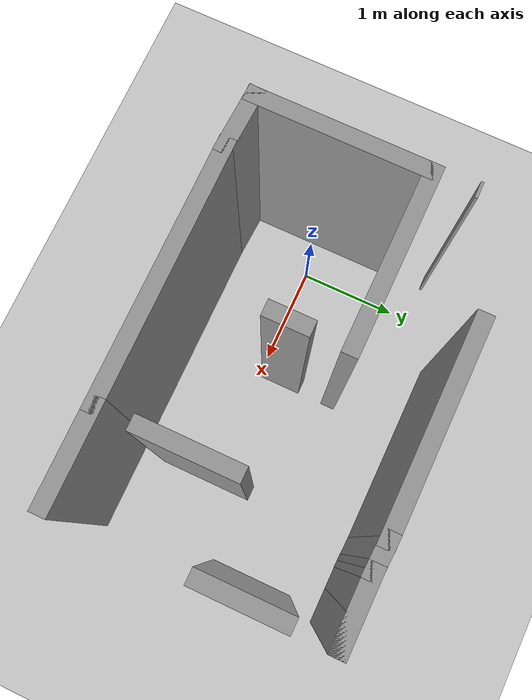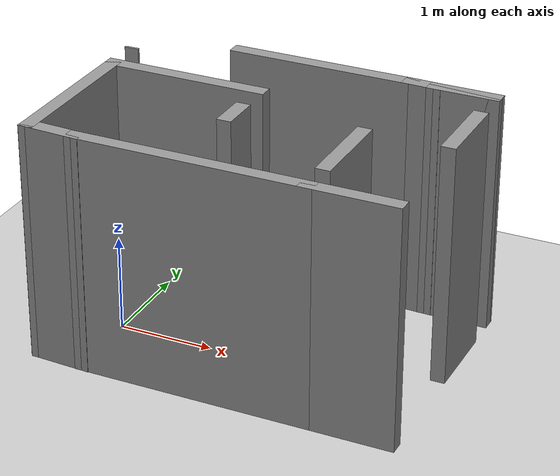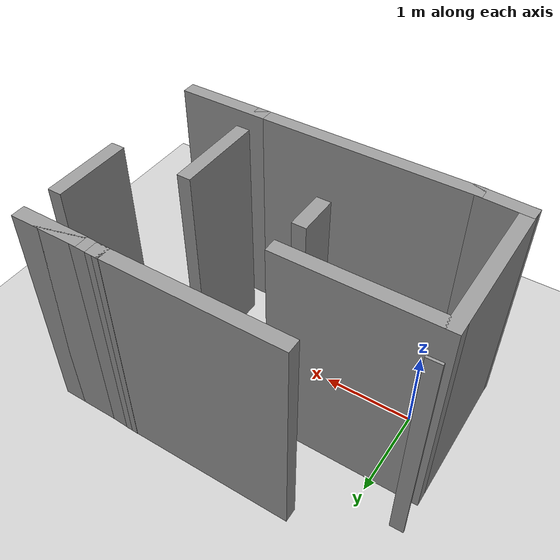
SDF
<sdf version="1.7">
 <world name="default">
  <light name="sun" type="directional">
   <pose>0 0 10 0 -0 0</pose>
   <diffuse>0.8 0.8 0.8 1</diffuse>
   <specular>0.2 0.2 0.2 1</specular>
   <attenuation>
    <range>1000</range>
    <constant>0.9</constant>
    <linear>0.01</linear>
    <quadratic>0.001</quadratic>
   </attenuation>
   <direction>-0.5 0.1 -0.9</direction>
   <spot><inner_angle>0</inner_angle><outer_angle>0</outer_angle><falloff>0</falloff></spot>
  </light>
  <model name="ground_plane">
   <static>1</static>
   <link name="link">
    <collision name="collision">
     <geometry><plane><normal>0 0 1</normal><size>100 100</size></plane></geometry>
     <surface><friction><ode><mu>100</mu><mu2>50</mu2></ode></friction></surface>
    </collision>
    <visual name="visual">
     <cast_shadows>0</cast_shadows>
     <geometry><plane><normal>0 0 1</normal><size>100 100</size></plane></geometry>
     <material>
      <script><uri>file://media/materials/scripts/gazebo.material</uri><name>Gazebo/Grey</name></script>
     </material>
    </visual>
   </link>
  </model>
  <gravity>0 0 -9.8</gravity>
  <magnetic_field>6e-06 2.3e-05 -4.2e-05</magnetic_field>
  <atmosphere type="adiabatic"/>
  <physics type="ode">
   <max_step_size>0.001</max_step_size>
   <real_time_factor>1</real_time_factor>
   <real_time_update_rate>1000</real_time_update_rate>
  </physics>
  <scene><ambient>0.4 0.4 0.4 1</ambient><background>0.7 0.7 0.7 1</background><shadows>1</shadows></scene>
  <audio><device>default</device></audio>
  <spherical_coordinates>
   <surface_model>EARTH_WGS84</surface_model>
   <latitude_deg>0</latitude_deg>
   <longitude_deg>0</longitude_deg>
   <elevation>0</elevation>
   <heading_deg>0</heading_deg>
  </spherical_coordinates>
  <model name="my_first_room">
   <link name="Wall_10">
    <pose>-1.04158 0.396319 0 0 -0 3.14159</pose>
    <visual name="Wall_10_Visual">
     <pose>0 0 1.25 0 -0 0</pose>
     <geometry><box><size>1.75 0.15 2.5</size></box></geometry>
     <material>
      <script><uri>file://media/materials/scripts/gazebo.material</uri><name>Gazebo/Grey</name></script>
      <ambient>1 1 1 1</ambient>
      <shader type="pixel"/>
     </material>
     <meta><layer>0</layer></meta>
    </visual>
    <collision name="Wall_10_Collision">
     <pose>0 0 1.25 0 -0 0</pose>
     <geometry><box><size>1.75 0.15 2.5</size></box></geometry>
     <surface>
      <friction>
       <ode><mu>1</mu><mu2>1</mu2><fdir1>0 0 0</fdir1><slip1>0</slip1><slip2>0</slip2></ode>
       <torsional>
        <coefficient>1</coefficient>
        <patch_radius>0</patch_radius>
        <surface_radius>0</surface_radius>
        <use_patch_radius>1</use_patch_radius>
        <ode><slip>0</slip></ode>
       </torsional>
      </friction>
      <bounce><restitution_coefficient>0</restitution_coefficient><threshold>1e+06</threshold></bounce>
      <contact>
       <collide_without_contact>0</collide_without_contact>
       <collide_without_contact_bitmask>1</collide_without_contact_bitmask>
       <collide_bitmask>1</collide_bitmask>
       <ode>
        <soft_cfm>0</soft_cfm>
        <soft_erp>0.2</soft_erp>
        <kp>1e+13</kp>
        <kd>1</kd>
        <max_vel>0.01</max_vel>
        <min_depth>0</min_depth>
       </ode>
       <bullet>
        <split_impulse>1</split_impulse>
        <split_impulse_penetration_threshold>-0.01</split_impulse_penetration_threshold>
        <soft_cfm>0</soft_cfm>
        <soft_erp>0.2</soft_erp>
        <kp>1e+13</kp>
        <kd>1</kd>
       </bullet>
      </contact>
     </surface>
    </collision>
   </link>
   <link name="Wall_11">
    <pose>-1.84158 -0.403681 0 0 0 -1.5708</pose>
    <visual name="Wall_11_Visual">
     <pose>0 0 1.25 0 -0 0</pose>
     <geometry><box><size>1.75 0.15 2.5</size></box></geometry>
     <material>
      <script><uri>file://media/materials/scripts/gazebo.material</uri><name>Gazebo/Grey</name></script>
      <ambient>1 1 1 1</ambient>
      <shader type="pixel"/>
     </material>
     <meta><layer>0</layer></meta>
    </visual>
    <collision name="Wall_11_Collision">
     <pose>0 0 1.25 0 -0 0</pose>
     <geometry><box><size>1.75 0.15 2.5</size></box></geometry>
     <surface>
      <friction>
       <ode><mu>1</mu><mu2>1</mu2><fdir1>0 0 0</fdir1><slip1>0</slip1><slip2>0</slip2></ode>
       <torsional>
        <coefficient>1</coefficient>
        <patch_radius>0</patch_radius>
        <surface_radius>0</surface_radius>
        <use_patch_radius>1</use_patch_radius>
        <ode><slip>0</slip></ode>
       </torsional>
      </friction>
      <bounce><restitution_coefficient>0</restitution_coefficient><threshold>1e+06</threshold></bounce>
      <contact>
       <collide_without_contact>0</collide_without_contact>
       <collide_without_contact_bitmask>1</collide_without_contact_bitmask>
       <collide_bitmask>1</collide_bitmask>
       <ode>
        <soft_cfm>0</soft_cfm>
        <soft_erp>0.2</soft_erp>
        <kp>1e+13</kp>
        <kd>1</kd>
        <max_vel>0.01</max_vel>
        <min_depth>0</min_depth>
       </ode>
       <bullet>
        <split_impulse>1</split_impulse>
        <split_impulse_penetration_threshold>-0.01</split_impulse_penetration_threshold>
        <soft_cfm>0</soft_cfm>
        <soft_erp>0.2</soft_erp>
        <kp>1e+13</kp>
        <kd>1</kd>
       </bullet>
      </contact>
     </surface>
    </collision>
   </link>
   <link name="Wall_12">
    <pose>-1.59049 -1.21673 0 0 0 -0.051901</pose>
    <visual name="Wall_12_Visual">
     <pose>0 0 1.25 0 -0 0</pose>
     <geometry><box><size>0.652851 0.15 2.5</size></box></geometry>
     <material>
      <script><uri>file://media/materials/scripts/gazebo.material</uri><name>Gazebo/Grey</name></script>
      <ambient>1 1 1 1</ambient>
      <shader type="pixel"/>
     </material>
     <meta><layer>0</layer></meta>
    </visual>
    <collision name="Wall_12_Collision">
     <pose>0 0 1.25 0 -0 0</pose>
     <geometry><box><size>0.652851 0.15 2.5</size></box></geometry>
     <surface>
      <friction>
       <ode><mu>1</mu><mu2>1</mu2><fdir1>0 0 0</fdir1><slip1>0</slip1><slip2>0</slip2></ode>
       <torsional>
        <coefficient>1</coefficient>
        <patch_radius>0</patch_radius>
        <surface_radius>0</surface_radius>
        <use_patch_radius>1</use_patch_radius>
        <ode><slip>0</slip></ode>
       </torsional>
      </friction>
      <bounce><restitution_coefficient>0</restitution_coefficient><threshold>1e+06</threshold></bounce>
      <contact>
       <collide_without_contact>0</collide_without_contact>
       <collide_without_contact_bitmask>1</collide_without_contact_bitmask>
       <collide_bitmask>1</collide_bitmask>
       <ode>
        <soft_cfm>0</soft_cfm>
        <soft_erp>0.2</soft_erp>
        <kp>1e+13</kp>
        <kd>1</kd>
        <max_vel>0.01</max_vel>
        <min_depth>0</min_depth>
       </ode>
       <bullet>
        <split_impulse>1</split_impulse>
        <split_impulse_penetration_threshold>-0.01</split_impulse_penetration_threshold>
        <soft_cfm>0</soft_cfm>
        <soft_erp>0.2</soft_erp>
        <kp>1e+13</kp>
        <kd>1</kd>
       </bullet>
      </contact>
     </surface>
    </collision>
   </link>
   <link name="Wall_15">
    <pose>0.068206 1.2311 0 0 -0 3.14159</pose>
    <visual name="Wall_15_Visual">
     <pose>0 0 1.25 0 -0 0</pose>
     <geometry><box><size>2 0.15 2.5</size></box></geometry>
     <material>
      <script><uri>file://media/materials/scripts/gazebo.material</uri><name>Gazebo/Grey</name></script>
      <ambient>1 1 1 1</ambient>
      <shader type="pixel"/>
     </material>
     <meta><layer>0</layer></meta>
    </visual>
    <collision name="Wall_15_Collision">
     <pose>0 0 1.25 0 -0 0</pose>
     <geometry><box><size>2 0.15 2.5</size></box></geometry>
     <surface>
      <friction>
       <ode><mu>1</mu><mu2>1</mu2><fdir1>0 0 0</fdir1><slip1>0</slip1><slip2>0</slip2></ode>
       <torsional>
        <coefficient>1</coefficient>
        <patch_radius>0</patch_radius>
        <surface_radius>0</surface_radius>
        <use_patch_radius>1</use_patch_radius>
        <ode><slip>0</slip></ode>
       </torsional>
      </friction>
      <bounce><restitution_coefficient>0</restitution_coefficient><threshold>1e+06</threshold></bounce>
      <contact>
       <collide_without_contact>0</collide_without_contact>
       <collide_without_contact_bitmask>1</collide_without_contact_bitmask>
       <collide_bitmask>1</collide_bitmask>
       <ode>
        <soft_cfm>0</soft_cfm>
        <soft_erp>0.2</soft_erp>
        <kp>1e+13</kp>
        <kd>1</kd>
        <max_vel>0.01</max_vel>
        <min_depth>0</min_depth>
       </ode>
       <bullet>
        <split_impulse>1</split_impulse>
        <split_impulse_penetration_threshold>-0.01</split_impulse_penetration_threshold>
        <soft_cfm>0</soft_cfm>
        <soft_erp>0.2</soft_erp>
        <kp>1e+13</kp>
        <kd>1</kd>
       </bullet>
      </contact>
     </surface>
    </collision>
   </link>
   <link name="Wall_18">
    <pose>-1.85027 0.791971 0 0 0 -1.54882</pose>
    <inertial>
     <inertia><ixx>0</ixx><ixy>0</ixy><ixz>0</ixz><iyy>0</iyy><iyz>0</iyz><izz>0</izz></inertia>
     <mass>0</mass>
    </inertial>
    <visual name="Wall_18_Visual">
     <pose>0 0 1.25 0 -0 0</pose>
     <geometry><box><size>0.026414 0.15 2.5</size></box></geometry>
     <material>
      <script><uri>file://media/materials/scripts/gazebo.material</uri><name>Gazebo/Grey</name></script>
      <ambient>1 1 1 1</ambient>
      <shader type="pixel"/>
     </material>
     <meta><layer>0</layer></meta>
    </visual>
    <collision name="Wall_18_Collision">
     <pose>0 0 1.25 0 -0 0</pose>
     <geometry><box><size>0.026414 0.15 2.5</size></box></geometry>
     <surface>
      <friction>
       <ode><mu>1</mu><mu2>1</mu2><fdir1>0 0 0</fdir1><slip1>0</slip1><slip2>0</slip2></ode>
       <torsional>
        <coefficient>1</coefficient>
        <patch_radius>0</patch_radius>
        <surface_radius>0</surface_radius>
        <use_patch_radius>1</use_patch_radius>
        <ode><slip>0</slip></ode>
       </torsional>
      </friction>
      <bounce><restitution_coefficient>0</restitution_coefficient><threshold>1e+06</threshold></bounce>
      <contact>
       <collide_without_contact>0</collide_without_contact>
       <collide_without_contact_bitmask>1</collide_without_contact_bitmask>
       <collide_bitmask>1</collide_bitmask>
       <ode>
        <soft_cfm>0</soft_cfm>
        <soft_erp>0.2</soft_erp>
        <kp>1e+13</kp>
        <kd>1</kd>
        <max_vel>0.01</max_vel>
        <min_depth>0</min_depth>
       </ode>
       <bullet>
        <split_impulse>1</split_impulse>
        <split_impulse_penetration_threshold>-0.01</split_impulse_penetration_threshold>
        <soft_cfm>0</soft_cfm>
        <soft_erp>0.2</soft_erp>
        <kp>1e+13</kp>
        <kd>1</kd>
       </bullet>
      </contact>
     </surface>
    </collision>
   </link>
   <link name="Wall_20">
    <pose>1.55408 1.22241 0 0 -0 0</pose>
    <visual name="Wall_20_Visual">
     <pose>0 0 1.25 0 -0 0</pose>
     <geometry><box><size>0.75 0.15 2.5</size></box></geometry>
     <material>
      <script><uri>file://media/materials/scripts/gazebo.material</uri><name>Gazebo/Grey</name></script>
      <ambient>1 1 1 1</ambient>
      <shader type="pixel"/>
     </material>
     <meta><layer>0</layer></meta>
    </visual>
    <collision name="Wall_20_Collision">
     <pose>0 0 1.25 0 -0 0</pose>
     <geometry><box><size>0.75 0.15 2.5</size></box></geometry>
     <surface>
      <friction>
       <ode><mu>1</mu><mu2>1</mu2><fdir1>0 0 0</fdir1><slip1>0</slip1><slip2>0</slip2></ode>
       <torsional>
        <coefficient>1</coefficient>
        <patch_radius>0</patch_radius>
        <surface_radius>0</surface_radius>
        <use_patch_radius>1</use_patch_radius>
        <ode><slip>0</slip></ode>
       </torsional>
      </friction>
      <bounce><restitution_coefficient>0</restitution_coefficient><threshold>1e+06</threshold></bounce>
      <contact>
       <collide_without_contact>0</collide_without_contact>
       <collide_without_contact_bitmask>1</collide_without_contact_bitmask>
       <collide_bitmask>1</collide_bitmask>
       <ode>
        <soft_cfm>0</soft_cfm>
        <soft_erp>0.2</soft_erp>
        <kp>1e+13</kp>
        <kd>1</kd>
        <max_vel>0.01</max_vel>
        <min_depth>0</min_depth>
       </ode>
       <bullet>
        <split_impulse>1</split_impulse>
        <split_impulse_penetration_threshold>-0.01</split_impulse_penetration_threshold>
        <soft_cfm>0</soft_cfm>
        <soft_erp>0.2</soft_erp>
        <kp>1e+13</kp>
        <kd>1</kd>
       </bullet>
      </contact>
     </surface>
    </collision>
   </link>
   <link name="Wall_21">
    <pose>1.55408 1.22241 0 0 -0 3.14159</pose>
    <visual name="Wall_21_Visual">
     <pose>0 0 1.25 0 -0 0</pose>
     <geometry><box><size>0.75 0.15 2.5</size></box></geometry>
     <material>
      <script><uri>file://media/materials/scripts/gazebo.material</uri><name>Gazebo/Grey</name></script>
      <ambient>1 1 1 1</ambient>
      <shader type="pixel"/>
     </material>
     <meta><layer>0</layer></meta>
    </visual>
    <collision name="Wall_21_Collision">
     <pose>0 0 1.25 0 -0 0</pose>
     <geometry><box><size>0.75 0.15 2.5</size></box></geometry>
     <surface>
      <friction>
       <ode><mu>1</mu><mu2>1</mu2><fdir1>0 0 0</fdir1><slip1>0</slip1><slip2>0</slip2></ode>
       <torsional>
        <coefficient>1</coefficient>
        <patch_radius>0</patch_radius>
        <surface_radius>0</surface_radius>
        <use_patch_radius>1</use_patch_radius>
        <ode><slip>0</slip></ode>
       </torsional>
      </friction>
      <bounce><restitution_coefficient>0</restitution_coefficient><threshold>1e+06</threshold></bounce>
      <contact>
       <collide_without_contact>0</collide_without_contact>
       <collide_without_contact_bitmask>1</collide_without_contact_bitmask>
       <collide_bitmask>1</collide_bitmask>
       <ode>
        <soft_cfm>0</soft_cfm>
        <soft_erp>0.2</soft_erp>
        <kp>1e+13</kp>
        <kd>1</kd>
        <max_vel>0.01</max_vel>
        <min_depth>0</min_depth>
       </ode>
       <bullet>
        <split_impulse>1</split_impulse>
        <split_impulse_penetration_threshold>-0.01</split_impulse_penetration_threshold>
        <soft_cfm>0</soft_cfm>
        <soft_erp>0.2</soft_erp>
        <kp>1e+13</kp>
        <kd>1</kd>
       </bullet>
      </contact>
     </surface>
    </collision>
   </link>
   <link name="Wall_22">
    <pose>1.12364 1.22675 0 0 -0 3.10827</pose>
    <visual name="Wall_22_Visual">
     <pose>0 0 1.25 0 -0 0</pose>
     <geometry><box><size>0.411014 0.15 2.5</size></box></geometry>
     <material>
      <script><uri>file://media/materials/scripts/gazebo.material</uri><name>Gazebo/Grey</name></script>
      <ambient>1 1 1 1</ambient>
      <shader type="pixel"/>
     </material>
     <meta><layer>0</layer></meta>
    </visual>
    <collision name="Wall_22_Collision">
     <pose>0 0 1.25 0 -0 0</pose>
     <geometry><box><size>0.411014 0.15 2.5</size></box></geometry>
     <surface>
      <friction>
       <ode><mu>1</mu><mu2>1</mu2><fdir1>0 0 0</fdir1><slip1>0</slip1><slip2>0</slip2></ode>
       <torsional>
        <coefficient>1</coefficient>
        <patch_radius>0</patch_radius>
        <surface_radius>0</surface_radius>
        <use_patch_radius>1</use_patch_radius>
        <ode><slip>0</slip></ode>
       </torsional>
      </friction>
      <bounce><restitution_coefficient>0</restitution_coefficient><threshold>1e+06</threshold></bounce>
      <contact>
       <collide_without_contact>0</collide_without_contact>
       <collide_without_contact_bitmask>1</collide_without_contact_bitmask>
       <collide_bitmask>1</collide_bitmask>
       <ode>
        <soft_cfm>0</soft_cfm>
        <soft_erp>0.2</soft_erp>
        <kp>1e+13</kp>
        <kd>1</kd>
        <max_vel>0.01</max_vel>
        <min_depth>0</min_depth>
       </ode>
       <bullet>
        <split_impulse>1</split_impulse>
        <split_impulse_penetration_threshold>-0.01</split_impulse_penetration_threshold>
        <soft_cfm>0</soft_cfm>
        <soft_erp>0.2</soft_erp>
        <kp>1e+13</kp>
        <kd>1</kd>
       </bullet>
      </contact>
     </surface>
    </collision>
   </link>
   <link name="Wall_24">
    <pose>1.85408 0.422406 0 0 0 -1.5708</pose>
    <inertial>
     <inertia><ixx>0</ixx><ixy>0</ixy><ixz>0</ixz><iyy>0</iyy><iyz>0</iyz><izz>0</izz></inertia>
     <mass>0</mass>
    </inertial>
    <visual name="Wall_24_Visual">
     <pose>0 0 1.25 0 -0 0</pose>
     <geometry><box><size>0.863249 0.15 2.5</size></box></geometry>
     <material>
      <script><uri>file://media/materials/scripts/gazebo.material</uri><name>Gazebo/Grey</name></script>
      <ambient>1 1 1 1</ambient>
      <shader type="pixel"/>
     </material>
     <meta><layer>0</layer></meta>
    </visual>
    <collision name="Wall_24_Collision">
     <pose>0 0 1.25 0 -0 0</pose>
     <geometry><box><size>0.863249 0.15 2.5</size></box></geometry>
     <surface>
      <friction>
       <ode><mu>1</mu><mu2>1</mu2><fdir1>0 0 0</fdir1><slip1>0</slip1><slip2>0</slip2></ode>
       <torsional>
        <coefficient>1</coefficient>
        <patch_radius>0</patch_radius>
        <surface_radius>0</surface_radius>
        <use_patch_radius>1</use_patch_radius>
        <ode><slip>0</slip></ode>
       </torsional>
      </friction>
      <bounce><restitution_coefficient>0</restitution_coefficient><threshold>1e+06</threshold></bounce>
      <contact>
       <collide_without_contact>0</collide_without_contact>
       <collide_without_contact_bitmask>1</collide_without_contact_bitmask>
       <collide_bitmask>1</collide_bitmask>
       <ode>
        <soft_cfm>0</soft_cfm>
        <soft_erp>0.2</soft_erp>
        <kp>1e+13</kp>
        <kd>1</kd>
        <max_vel>0.01</max_vel>
        <min_depth>0</min_depth>
       </ode>
       <bullet>
        <split_impulse>1</split_impulse>
        <split_impulse_penetration_threshold>-0.01</split_impulse_penetration_threshold>
        <soft_cfm>0</soft_cfm>
        <soft_erp>0.2</soft_erp>
        <kp>1e+13</kp>
        <kd>1</kd>
       </bullet>
      </contact>
     </surface>
    </collision>
   </link>
   <link name="Wall_26">
    <pose>1.4356 -1.22977 0 0 -0 0</pose>
    <visual name="Wall_26_Visual">
     <pose>0 0 1.25 0 -0 0</pose>
     <geometry><box><size>1 0.15 2.5</size></box></geometry>
     <material>
      <script><uri>file://media/materials/scripts/gazebo.material</uri><name>Gazebo/Grey</name></script>
      <ambient>1 1 1 1</ambient>
      <shader type="pixel"/>
     </material>
     <meta><layer>0</layer></meta>
    </visual>
    <collision name="Wall_26_Collision">
     <pose>0 0 1.25 0 -0 0</pose>
     <geometry><box><size>1 0.15 2.5</size></box></geometry>
     <surface>
      <friction>
       <ode><mu>1</mu><mu2>1</mu2><fdir1>0 0 0</fdir1><slip1>0</slip1><slip2>0</slip2></ode>
       <torsional>
        <coefficient>1</coefficient>
        <patch_radius>0</patch_radius>
        <surface_radius>0</surface_radius>
        <use_patch_radius>1</use_patch_radius>
        <ode><slip>0</slip></ode>
       </torsional>
      </friction>
      <bounce><restitution_coefficient>0</restitution_coefficient><threshold>1e+06</threshold></bounce>
      <contact>
       <collide_without_contact>0</collide_without_contact>
       <collide_without_contact_bitmask>1</collide_without_contact_bitmask>
       <collide_bitmask>1</collide_bitmask>
       <ode>
        <soft_cfm>0</soft_cfm>
        <soft_erp>0.2</soft_erp>
        <kp>1e+13</kp>
        <kd>1</kd>
        <max_vel>0.01</max_vel>
        <min_depth>0</min_depth>
       </ode>
       <bullet>
        <split_impulse>1</split_impulse>
        <split_impulse_penetration_threshold>-0.01</split_impulse_penetration_threshold>
        <soft_cfm>0</soft_cfm>
        <soft_erp>0.2</soft_erp>
        <kp>1e+13</kp>
        <kd>1</kd>
       </bullet>
      </contact>
     </surface>
    </collision>
   </link>
   <link name="Wall_4">
    <pose>1.0106 -0.429768 0 0 0 -1.5708</pose>
    <inertial>
     <inertia><ixx>0</ixx><ixy>0</ixy><ixz>0</ixz><iyy>0</iyy><iyz>0</iyz><izz>0</izz></inertia>
     <mass>0</mass>
    </inertial>
    <visual name="Wall_4_Visual">
     <pose>0 0 1.25 0 -0 0</pose>
     <geometry><box><size>0.963819 0.15 2.5</size></box></geometry>
     <material>
      <script><uri>file://media/materials/scripts/gazebo.material</uri><name>Gazebo/Grey</name></script>
      <ambient>1 1 1 1</ambient>
      <shader type="pixel"/>
     </material>
     <meta><layer>0</layer></meta>
    </visual>
    <collision name="Wall_4_Collision">
     <pose>0 0 1.25 0 -0 0</pose>
     <geometry><box><size>0.963819 0.15 2.5</size></box></geometry>
     <surface>
      <friction>
       <ode><mu>1</mu><mu2>1</mu2><fdir1>0 0 0</fdir1><slip1>0</slip1><slip2>0</slip2></ode>
       <torsional>
        <coefficient>1</coefficient>
        <patch_radius>0</patch_radius>
        <surface_radius>0</surface_radius>
        <use_patch_radius>1</use_patch_radius>
        <ode><slip>0</slip></ode>
       </torsional>
      </friction>
      <bounce><restitution_coefficient>0</restitution_coefficient><threshold>1e+06</threshold></bounce>
      <contact>
       <collide_without_contact>0</collide_without_contact>
       <collide_without_contact_bitmask>1</collide_without_contact_bitmask>
       <collide_bitmask>1</collide_bitmask>
       <ode>
        <soft_cfm>0</soft_cfm>
        <soft_erp>0.2</soft_erp>
        <kp>1e+13</kp>
        <kd>1</kd>
        <max_vel>0.01</max_vel>
        <min_depth>0</min_depth>
       </ode>
       <bullet>
        <split_impulse>1</split_impulse>
        <split_impulse_penetration_threshold>-0.01</split_impulse_penetration_threshold>
        <soft_cfm>0</soft_cfm>
        <soft_erp>0.2</soft_erp>
        <kp>1e+13</kp>
        <kd>1</kd>
       </bullet>
      </contact>
     </surface>
    </collision>
   </link>
   <link name="Wall_6">
    <pose>-0.241576 -0.153681 0 0 0 -1.5708</pose>
    <inertial>
     <inertia><ixx>0</ixx><ixy>0</ixy><ixz>0</ixz><iyy>0</iyy><iyz>0</iyz><izz>0</izz></inertia>
     <mass>0</mass>
    </inertial>
    <visual name="Wall_6_Visual">
     <pose>0 0 1.25 0 -0 0</pose>
     <geometry><box><size>0.424243 0.15 2.5</size></box></geometry>
     <material>
      <script><uri>file://media/materials/scripts/gazebo.material</uri><name>Gazebo/Grey</name></script>
      <ambient>1 1 1 1</ambient>
      <shader type="pixel"/>
     </material>
     <meta><layer>0</layer></meta>
    </visual>
    <collision name="Wall_6_Collision">
     <pose>0 0 1.25 0 -0 0</pose>
     <geometry><box><size>0.424243 0.15 2.5</size></box></geometry>
     <surface>
      <friction>
       <ode><mu>1</mu><mu2>1</mu2><fdir1>0 0 0</fdir1><slip1>0</slip1><slip2>0</slip2></ode>
       <torsional>
        <coefficient>1</coefficient>
        <patch_radius>0</patch_radius>
        <surface_radius>0</surface_radius>
        <use_patch_radius>1</use_patch_radius>
        <ode><slip>0</slip></ode>
       </torsional>
      </friction>
      <bounce><restitution_coefficient>0</restitution_coefficient><threshold>1e+06</threshold></bounce>
      <contact>
       <collide_without_contact>0</collide_without_contact>
       <collide_without_contact_bitmask>1</collide_without_contact_bitmask>
       <collide_bitmask>1</collide_bitmask>
       <ode>
        <soft_cfm>0</soft_cfm>
        <soft_erp>0.2</soft_erp>
        <kp>1e+13</kp>
        <kd>1</kd>
        <max_vel>0.01</max_vel>
        <min_depth>0</min_depth>
       </ode>
       <bullet>
        <split_impulse>1</split_impulse>
        <split_impulse_penetration_threshold>-0.01</split_impulse_penetration_threshold>
        <soft_cfm>0</soft_cfm>
        <soft_erp>0.2</soft_erp>
        <kp>1e+13</kp>
        <kd>1</kd>
       </bullet>
      </contact>
     </surface>
    </collision>
   </link>
   <link name="Wall_8">
    <pose>-0.164402 -1.22977 0 0 -0 3.14159</pose>
    <visual name="Wall_8_Visual">
     <pose>0 0 1.25 0 -0 0</pose>
     <geometry><box><size>2.5 0.15 2.5</size></box></geometry>
     <material>
      <script><uri>file://media/materials/scripts/gazebo.material</uri><name>Gazebo/Grey</name></script>
      <ambient>1 1 1 1</ambient>
      <shader type="pixel"/>
     </material>
     <meta><layer>0</layer></meta>
    </visual>
    <collision name="Wall_8_Collision">
     <pose>0 0 1.25 0 -0 0</pose>
     <geometry><box><size>2.5 0.15 2.5</size></box></geometry>
     <surface>
      <friction>
       <ode><mu>1</mu><mu2>1</mu2><fdir1>0 0 0</fdir1><slip1>0</slip1><slip2>0</slip2></ode>
       <torsional>
        <coefficient>1</coefficient>
        <patch_radius>0</patch_radius>
        <surface_radius>0</surface_radius>
        <use_patch_radius>1</use_patch_radius>
        <ode><slip>0</slip></ode>
       </torsional>
      </friction>
      <bounce><restitution_coefficient>0</restitution_coefficient><threshold>1e+06</threshold></bounce>
      <contact>
       <collide_without_contact>0</collide_without_contact>
       <collide_without_contact_bitmask>1</collide_without_contact_bitmask>
       <collide_bitmask>1</collide_bitmask>
       <ode>
        <soft_cfm>0</soft_cfm>
        <soft_erp>0.2</soft_erp>
        <kp>1e+13</kp>
        <kd>1</kd>
        <max_vel>0.01</max_vel>
        <min_depth>0</min_depth>
       </ode>
       <bullet>
        <split_impulse>1</split_impulse>
        <split_impulse_penetration_threshold>-0.01</split_impulse_penetration_threshold>
        <soft_cfm>0</soft_cfm>
        <soft_erp>0.2</soft_erp>
        <kp>1e+13</kp>
        <kd>1</kd>
       </bullet>
      </contact>
     </surface>
    </collision>
   </link>
   <static>1</static>
   <pose>1.39349 0.401243 0 0 -0 0</pose>
  </model>
 </world>
</sdf>
